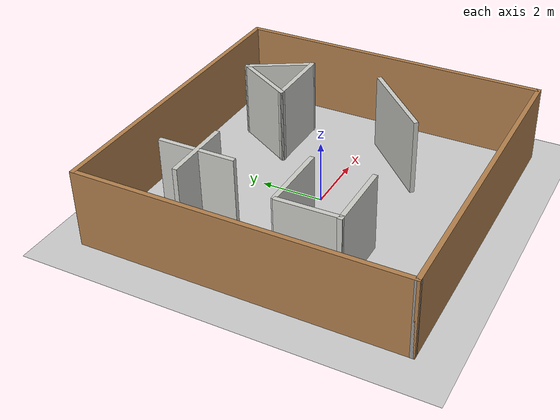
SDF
<sdf version="1.7">
 <world name="default">
  <light name="sun" type="directional">
   <pose>0 0 10 0 -0 0</pose>
   <diffuse>0.8 0.8 0.8 1</diffuse>
   <specular>0.2 0.2 0.2 1</specular>
   <attenuation>
    <range>1000</range>
    <constant>0.9</constant>
    <linear>0.01</linear>
    <quadratic>0.001</quadratic>
   </attenuation>
   <direction>-0.5 0.1 -0.9</direction>
   <spot><inner_angle>0</inner_angle><outer_angle>0</outer_angle><falloff>0</falloff></spot>
  </light>
  <model name="ground_plane">
   <static>1</static>
   <link name="link">
    <collision name="collision">
     <geometry><plane><normal>0 0 1</normal><size>100 100</size></plane></geometry>
     <surface>
      <contact><collide_bitmask>65535</collide_bitmask></contact>
      <friction><ode><mu>100</mu><mu2>50</mu2></ode></friction>
     </surface>
    </collision>
    <visual name="visual">
     <cast_shadows>0</cast_shadows>
     <geometry><plane><normal>0 0 1</normal><size>100 100</size></plane></geometry>
     <material>
      <script><uri>file://media/materials/scripts/gazebo.material</uri><name>Gazebo/Grey</name></script>
     </material>
    </visual>
   </link>
  </model>
  <gravity>0 0 -9.8</gravity>
  <magnetic_field>6e-06 2.3e-05 -4.2e-05</magnetic_field>
  <atmosphere type="adiabatic"/>
  <physics type="ode">
   <max_step_size>0.001</max_step_size>
   <real_time_factor>1</real_time_factor>
   <real_time_update_rate>1000</real_time_update_rate>
  </physics>
  <scene><ambient>0.4 0.4 0.4 1</ambient><background>0.7 0.7 0.7 1</background><shadows>1</shadows></scene>
  <spherical_coordinates>
   <surface_model>EARTH_WGS84</surface_model>
   <latitude_deg>0</latitude_deg>
   <longitude_deg>0</longitude_deg>
   <elevation>0</elevation>
   <heading_deg>0</heading_deg>
  </spherical_coordinates>
  <model name="Untitled">
   <pose>0.110813 0.040164 0 0 -0 0</pose>
   <link name="Wall_10">
    <collision name="Wall_10_Collision">
     <geometry><box><size>10.25 0.15 2.5</size></box></geometry>
     <pose>0 0 1.25 0 -0 0</pose>
    </collision>
    <visual name="Wall_10_Visual">
     <pose>0 0 1.25 0 -0 0</pose>
     <geometry><box><size>10.25 0.15 2.5</size></box></geometry>
     <material>
      <script><uri>file://media/materials/scripts/gazebo.material</uri><name>Gazebo/Wood</name></script>
      <ambient>1 1 1 1</ambient>
     </material>
     <meta><layer>0</layer></meta>
    </visual>
    <pose>0 5.05 0 0 -0 0</pose>
   </link>
   <link name="Wall_11">
    <collision name="Wall_11_Collision">
     <geometry><box><size>10.25 0.15 2.5</size></box></geometry>
     <pose>0 0 1.25 0 -0 0</pose>
    </collision>
    <visual name="Wall_11_Visual">
     <pose>0 0 1.25 0 -0 0</pose>
     <geometry><box><size>10.25 0.15 2.5</size></box></geometry>
     <material>
      <script><uri>file://media/materials/scripts/gazebo.material</uri><name>Gazebo/Wood</name></script>
      <ambient>1 1 1 1</ambient>
     </material>
     <meta><layer>0</layer></meta>
    </visual>
    <pose>5.05 0 0 0 -0 -1.5708</pose>
   </link>
   <link name="Wall_12">
    <collision name="Wall_12_Collision">
     <geometry><box><size>10.25 0.15 2.5</size></box></geometry>
     <pose>0 0 1.25 0 -0 0</pose>
    </collision>
    <visual name="Wall_12_Visual">
     <pose>0 0 1.25 0 -0 0</pose>
     <geometry><box><size>10.25 0.15 2.5</size></box></geometry>
     <material>
      <script><uri>file://media/materials/scripts/gazebo.material</uri><name>Gazebo/Wood</name></script>
      <ambient>1 1 1 1</ambient>
     </material>
     <meta><layer>0</layer></meta>
    </visual>
    <pose>0 -5.05 0 0 -0 3.14159</pose>
   </link>
   <link name="Wall_13">
    <collision name="Wall_13_Collision">
     <geometry><box><size>0.15 0.15 2.5</size></box></geometry>
     <pose>0 0 1.25 0 -0 0</pose>
    </collision>
    <visual name="Wall_13_Visual">
     <pose>0 0 1.25 0 -0 0</pose>
     <geometry><box><size>0.15 0.15 2.5</size></box></geometry>
     <material>
      <script><uri>file://media/materials/scripts/gazebo.material</uri><name>Gazebo/Grey</name></script>
      <ambient>1 1 1 1</ambient>
     </material>
     <meta><layer>0</layer></meta>
    </visual>
    <pose>-5.05 -5.05 0 0 -0 0</pose>
   </link>
   <link name="Wall_14">
    <collision name="Wall_14_Collision">
     <geometry><box><size>10.25 0.15 2.5</size></box></geometry>
     <pose>0 0 1.25 0 -0 0</pose>
    </collision>
    <visual name="Wall_14_Visual">
     <pose>0 0 1.25 0 -0 0</pose>
     <geometry><box><size>10.25 0.15 2.5</size></box></geometry>
     <material>
      <script><uri>file://media/materials/scripts/gazebo.material</uri><name>Gazebo/Wood</name></script>
      <ambient>1 1 1 1</ambient>
     </material>
     <meta><layer>0</layer></meta>
    </visual>
    <pose>-5.05 0 0 0 -0 1.5708</pose>
   </link>
   <link name="Wall_16">
    <collision name="Wall_16_Collision">
     <geometry><box><size>2.25 0.15 2.5</size></box></geometry>
     <pose>0 0 1.25 0 -0 0</pose>
    </collision>
    <visual name="Wall_16_Visual">
     <pose>0 0 1.25 0 -0 0</pose>
     <geometry><box><size>2.25 0.15 2.5</size></box></geometry>
     <material>
      <script><uri>file://media/materials/scripts/gazebo.material</uri><name>Gazebo/CeilingTiled</name></script>
      <ambient>1 1 1 1</ambient>
     </material>
     <meta><layer>0</layer></meta>
    </visual>
    <pose>-2.62344 2.63337 0 0 -0 0</pose>
   </link>
   <link name="Wall_19">
    <collision name="Wall_19_Collision">
     <geometry><box><size>2.5 0.15 2.5</size></box></geometry>
     <pose>0 0 1.25 0 -0 0</pose>
    </collision>
    <visual name="Wall_19_Visual">
     <pose>0 0 1.25 0 -0 0</pose>
     <geometry><box><size>2.5 0.15 2.5</size></box></geometry>
     <material>
      <script><uri>file://media/materials/scripts/gazebo.material</uri><name>Gazebo/CeilingTiled</name></script>
      <ambient>1 1 1 1</ambient>
     </material>
     <meta><layer>0</layer></meta>
    </visual>
    <pose>-2.60278 2.65139 0 0 -0 -1.5708</pose>
   </link>
   <link name="Wall_21">
    <collision name="Wall_21_Collision">
     <geometry><box><size>2.25 0.15 2.5</size></box></geometry>
     <pose>0 0 1.25 0 -0 0</pose>
    </collision>
    <visual name="Wall_21_Visual">
     <pose>0 0 1.25 0 -0 0</pose>
     <geometry><box><size>2.25 0.15 2.5</size></box></geometry>
     <material>
      <script><uri>file://media/materials/scripts/gazebo.material</uri><name>Gazebo/CeilingTiled</name></script>
      <ambient>1 1 1 1</ambient>
     </material>
     <meta><layer>0</layer></meta>
    </visual>
    <pose>1.91961 3.00883 0 0 -0 -2.0944</pose>
   </link>
   <link name="Wall_22">
    <collision name="Wall_22_Collision">
     <geometry><box><size>2.25 0.15 2.5</size></box></geometry>
     <pose>0 0 1.25 0 -0 0</pose>
    </collision>
    <visual name="Wall_22_Visual">
     <pose>0 0 1.25 0 -0 0</pose>
     <geometry><box><size>2.25 0.15 2.5</size></box></geometry>
     <material>
      <script><uri>file://media/materials/scripts/gazebo.material</uri><name>Gazebo/CeilingTiled</name></script>
      <ambient>1 1 1 1</ambient>
     </material>
     <meta><layer>0</layer></meta>
    </visual>
    <pose>2.44461 2.09951 0 0 -0 0</pose>
   </link>
   <link name="Wall_23">
    <collision name="Wall_23_Collision">
     <geometry><box><size>2.25 0.15 2.5</size></box></geometry>
     <pose>0 0 1.25 0 -0 0</pose>
    </collision>
    <visual name="Wall_23_Visual">
     <pose>0 0 1.25 0 -0 0</pose>
     <geometry><box><size>2.25 0.15 2.5</size></box></geometry>
     <material>
      <script><uri>file://media/materials/scripts/gazebo.material</uri><name>Gazebo/CeilingTiled</name></script>
      <ambient>1 1 1 1</ambient>
     </material>
     <meta><layer>0</layer></meta>
    </visual>
    <pose>2.96961 3.00883 0 0 -0 2.0944</pose>
   </link>
   <link name="Wall_25">
    <collision name="Wall_25_Collision">
     <geometry><box><size>2.03084 0.15 2.5</size></box></geometry>
     <pose>0 0 1.25 0 -0 0</pose>
    </collision>
    <visual name="Wall_25_Visual">
     <pose>0 0 1.25 0 -0 0</pose>
     <geometry><box><size>2.03084 0.15 2.5</size></box></geometry>
     <material>
      <script><uri>file://media/materials/scripts/gazebo.material</uri><name>Gazebo/CeilingTiled</name></script>
      <ambient>1 1 1 1</ambient>
     </material>
     <meta><layer>0</layer></meta>
    </visual>
    <pose>-3.68873 -1.45772 0 0 -0 -1.55453</pose>
   </link>
   <link name="Wall_26">
    <collision name="Wall_26_Collision">
     <geometry><box><size>2.25 0.15 2.5</size></box></geometry>
     <pose>0 0 1.25 0 -0 0</pose>
    </collision>
    <visual name="Wall_26_Visual">
     <pose>0 0 1.25 0 -0 0</pose>
     <geometry><box><size>2.25 0.15 2.5</size></box></geometry>
     <material>
      <script><uri>file://media/materials/scripts/gazebo.material</uri><name>Gazebo/CeilingTiled</name></script>
      <ambient>1 1 1 1</ambient>
     </material>
     <meta><layer>0</layer></meta>
    </visual>
    <pose>-2.65403 -2.39801 0 0 -0 0</pose>
   </link>
   <link name="Wall_28">
    <collision name="Wall_28_Collision">
     <geometry><box><size>3 0.15 2.5</size></box></geometry>
     <pose>0 0 1.25 0 -0 0</pose>
    </collision>
    <visual name="Wall_28_Visual">
     <pose>0 0 1.25 0 -0 0</pose>
     <geometry><box><size>3 0.15 2.5</size></box></geometry>
     <material>
      <script><uri>file://media/materials/scripts/gazebo.material</uri><name>Gazebo/CeilingTiled</name></script>
      <ambient>1 1 1 1</ambient>
     </material>
     <meta><layer>0</layer></meta>
    </visual>
    <pose>2.56882 -1.31092 0 0 -0 -2.35619</pose>
   </link>
   <link name="Wall_30">
    <collision name="Wall_30_Collision">
     <geometry><box><size>2.25 0.15 2.5</size></box></geometry>
     <pose>0 0 1.25 0 -0 0</pose>
    </collision>
    <visual name="Wall_30_Visual">
     <pose>0 0 1.25 0 -0 0</pose>
     <geometry><box><size>2.25 0.15 2.5</size></box></geometry>
     <material>
      <script><uri>file://media/materials/scripts/gazebo.material</uri><name>Gazebo/CeilingTiled</name></script>
      <ambient>1 1 1 1</ambient>
     </material>
     <meta><layer>0</layer></meta>
    </visual>
    <pose>-2.62344 -0.456241 0 0 -0 0</pose>
   </link>
   <static>1</static>
  </model>
 </world>
</sdf>
